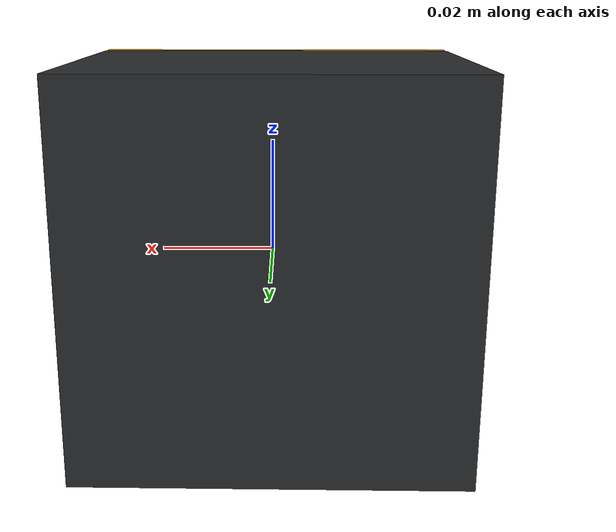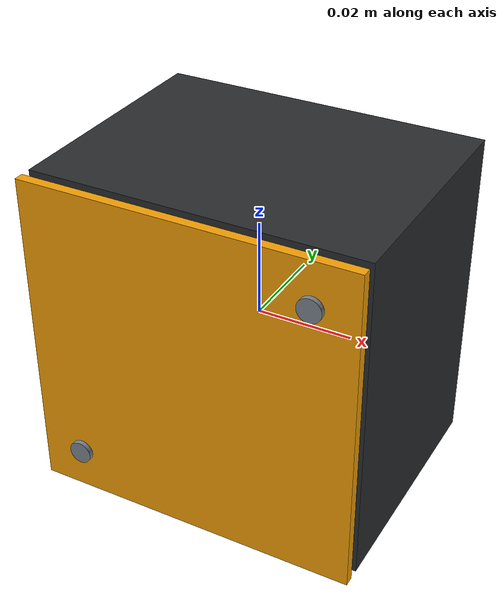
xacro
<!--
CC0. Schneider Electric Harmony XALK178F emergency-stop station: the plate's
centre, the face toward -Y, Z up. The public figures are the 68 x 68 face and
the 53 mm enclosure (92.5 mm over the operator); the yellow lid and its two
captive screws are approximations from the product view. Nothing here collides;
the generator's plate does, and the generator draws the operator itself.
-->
<?xml version="1.0"?>
<robot xmlns:xacro="http://www.ros.org/wiki/xacro" name="schneider-xalk178f-box">
  <xacro:include filename="../../equipment-common/visual/primitives.xacro"/>
  <xacro:arg name="width" default="0.068"/><xacro:arg name="height" default="0.068"/>
  <xacro:arg name="thickness" default="0.053"/>
  <xacro:property name="w" value="$(arg width)"/><xacro:property name="h" value="$(arg height)"/>
  <xacro:property name="t" value="$(arg thickness)"/>
  <material name="enclosure"><color rgba="0.16 0.17 0.18 1"/></material>
  <material name="lid"><color rgba="0.95 0.62 0.015 1"/></material>
  <material name="screw"><color rgba="0.48 0.51 0.55 1"/></material>
  <link name="root"/>
  <xacro:box name="enclosure" size="${w} ${t - 0.002} ${h}" xyz="0 0.001 0" mat="enclosure"/>
  <!-- The lid stands 2 mm proud of the enclosure; the operator's collar sits on it. -->
  <xacro:box name="lid" size="${w} 0.002 ${h}" xyz="0 ${-t/2 - 0.001} 0" mat="lid"/>
  <xacro:cylinder name="screw_lower_left" radius="0.0024" length="0.001" xyz="${-w/2 + 0.009} ${-t/2 - 0.0025} ${-h/2 + 0.009}" rpy="${pi/2} 0 0" mat="screw"/>
  <xacro:cylinder name="screw_upper_right" radius="0.0024" length="0.001" xyz="${w/2 - 0.009} ${-t/2 - 0.0025} ${h/2 - 0.009}" rpy="${pi/2} 0 0" mat="screw"/>
</robot>

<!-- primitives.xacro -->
<!-- CC0. Visual-only primitives, each with a stable removable resident name. -->
<robot xmlns:xacro="http://www.ros.org/wiki/xacro">
  <xacro:macro name="box" params="name size xyz mat">
    <link name="${name}"><visual><origin xyz="${xyz}"/>
      <geometry><box size="${size}"/></geometry><material name="${mat}"/>
    </visual></link>
    <joint name="j_${name}" type="fixed"><parent link="root"/><child link="${name}"/></joint>
  </xacro:macro>
  <xacro:macro name="cylinder" params="name radius length xyz rpy mat">
    <link name="${name}"><visual><origin xyz="${xyz}" rpy="${rpy}"/>
      <geometry><cylinder radius="${radius}" length="${length}"/></geometry><material name="${mat}"/>
    </visual></link>
    <joint name="j_${name}" type="fixed"><parent link="root"/><child link="${name}"/></joint>
  </xacro:macro>
  <xacro:macro name="mesh" params="name file xyz mat">
    <link name="${name}"><visual><origin xyz="${xyz}"/>
      <geometry><mesh filename="${file}"/></geometry><material name="${mat}"/>
    </visual></link>
    <joint name="j_${name}" type="fixed"><parent link="root"/><child link="${name}"/></joint>
  </xacro:macro>
</robot>
